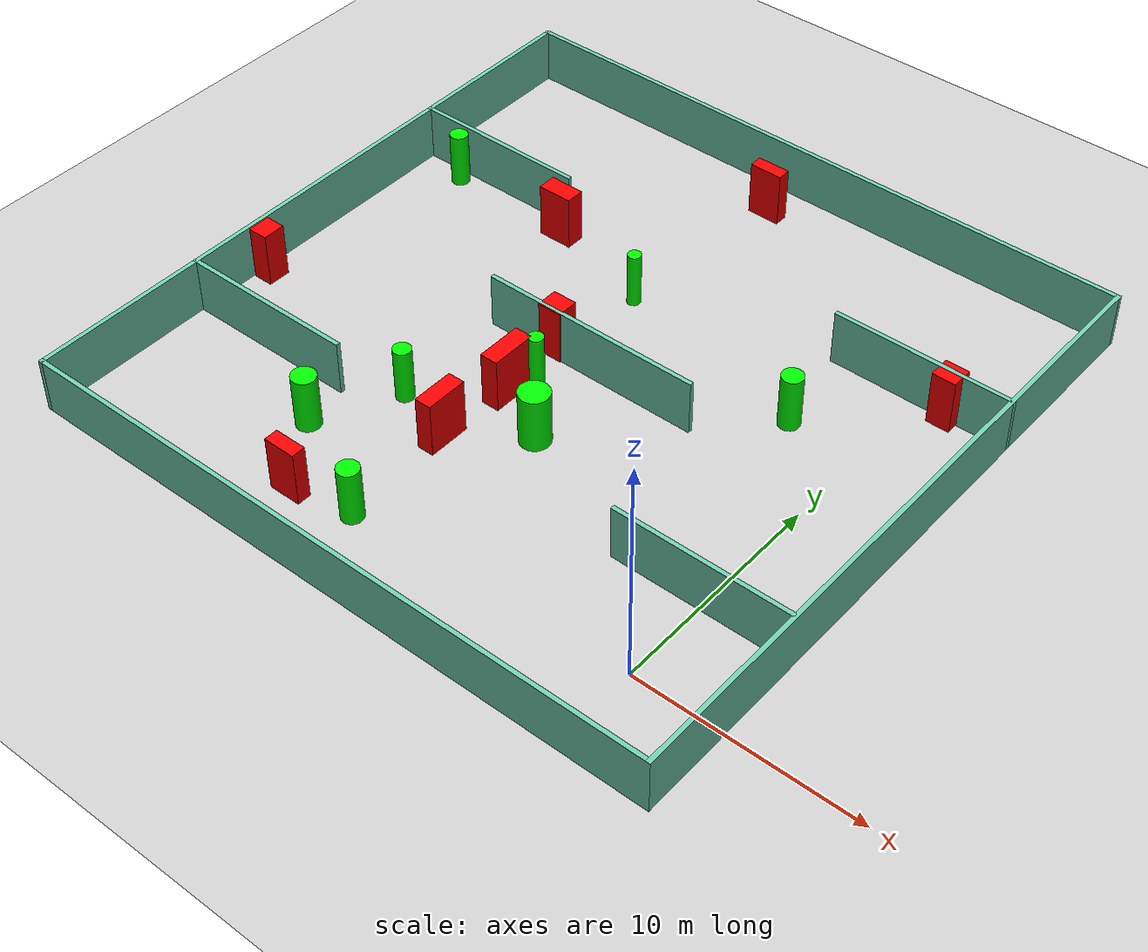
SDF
<sdf version="1.7">
 <world name="default">
  <light name="sun" type="directional">
   <pose>0 0 10 0 -0 0</pose>
   <diffuse>0.8 0.8 0.8 1</diffuse>
   <specular>0.2 0.2 0.2 1</specular>
   <attenuation>
    <range>1000</range>
    <constant>0.9</constant>
    <linear>0.01</linear>
    <quadratic>0.001</quadratic>
   </attenuation>
   <direction>-0.5 0.1 -0.9</direction>
   <spot><inner_angle>0</inner_angle><outer_angle>0</outer_angle><falloff>0</falloff></spot>
  </light>
  <model name="ground_plane">
   <static>1</static>
   <link name="link">
    <collision name="collision">
     <geometry><plane><normal>0 0 1</normal><size>100 100</size></plane></geometry>
     <surface>
      <contact><collide_bitmask>65535</collide_bitmask></contact>
      <friction><ode><mu>100</mu><mu2>50</mu2></ode></friction>
     </surface>
    </collision>
    <visual name="visual">
     <cast_shadows>0</cast_shadows>
     <geometry><plane><normal>0 0 1</normal><size>100 100</size></plane></geometry>
     <material>
      <script><uri>file://media/materials/scripts/gazebo.material</uri><name>Gazebo/Grey</name></script>
     </material>
    </visual>
   </link>
  </model>
  <gravity>0 0 -9.8</gravity>
  <magnetic_field>6e-06 2.3e-05 -4.2e-05</magnetic_field>
  <atmosphere type="adiabatic"/>
  <physics type="ode">
   <max_step_size>0.001</max_step_size>
   <real_time_factor>1</real_time_factor>
   <real_time_update_rate>1000</real_time_update_rate>
  </physics>
  <scene><ambient>0.4 0.4 0.4 1</ambient><background>0.7 0.7 0.7 1</background><shadows>1</shadows></scene>
  <spherical_coordinates>
   <surface_model>EARTH_WGS84</surface_model>
   <latitude_deg>0</latitude_deg>
   <longitude_deg>0</longitude_deg>
   <elevation>0</elevation>
   <heading_deg>0</heading_deg>
  </spherical_coordinates>
  <model name="my_base_walls">
   <link name="Wall_10">
    <collision name="Wall_10_Collision">
     <geometry><box><size>8.2 0.2 2.5</size></box></geometry>
     <pose>0 0 1.25 0 -0 0</pose>
    </collision>
    <visual name="Wall_10_Visual">
     <pose>0 0 1.25 0 -0 0</pose>
     <geometry><box><size>8.2 0.2 2.5</size></box></geometry>
     <material>
      <script><uri>file://media/materials/scripts/gazebo.material</uri><name>Gazebo/Grey</name></script>
      <ambient>0.435294 0.796078 0.67451 1</ambient>
     </material>
     <meta><layer>0</layer></meta>
    </visual>
    <pose>-11 -7 0 0 -0 0</pose>
   </link>
   <link name="Wall_12">
    <collision name="Wall_12_Collision">
     <geometry><box><size>8.2 0.2 2.5</size></box></geometry>
     <pose>0 0 1.25 0 -0 0</pose>
    </collision>
    <visual name="Wall_12_Visual">
     <pose>0 0 1.25 0 -0 0</pose>
     <geometry><box><size>8.2 0.2 2.5</size></box></geometry>
     <material>
      <script><uri>file://media/materials/scripts/gazebo.material</uri><name>Gazebo/Grey</name></script>
      <ambient>0.435294 0.796078 0.67451 1</ambient>
     </material>
     <meta><layer>0</layer></meta>
    </visual>
    <pose>-11 7 0 0 -0 0</pose>
   </link>
   <link name="Wall_14">
    <collision name="Wall_14_Collision">
     <geometry><box><size>8.2 0.2 2.5</size></box></geometry>
     <pose>0 0 1.25 0 -0 0</pose>
    </collision>
    <visual name="Wall_14_Visual">
     <pose>0 0 1.25 0 -0 0</pose>
     <geometry><box><size>8.2 0.2 2.5</size></box></geometry>
     <material>
      <script><uri>file://media/materials/scripts/gazebo.material</uri><name>Gazebo/Grey</name></script>
      <ambient>0.435294 0.796078 0.67451 1</ambient>
     </material>
     <meta><layer>0</layer></meta>
    </visual>
    <pose>11 7 0 0 -0 3.14159</pose>
   </link>
   <link name="Wall_16">
    <collision name="Wall_16_Collision">
     <geometry><box><size>10.2 0.2 2.5</size></box></geometry>
     <pose>0 0 1.25 0 -0 0</pose>
    </collision>
    <visual name="Wall_16_Visual">
     <pose>0 0 1.25 0 -0 0</pose>
     <geometry><box><size>10.2 0.2 2.5</size></box></geometry>
     <material>
      <script><uri>file://media/materials/scripts/gazebo.material</uri><name>Gazebo/Grey</name></script>
      <ambient>0.435294 0.796078 0.67451 1</ambient>
     </material>
     <meta><layer>0</layer></meta>
    </visual>
    <pose>0 0 0 0 -0 3.14159</pose>
   </link>
   <link name="Wall_2">
    <collision name="Wall_2_Collision">
     <geometry><box><size>30.2 0.2 2.5</size></box></geometry>
     <pose>0 0 1.25 0 -0 0</pose>
    </collision>
    <visual name="Wall_2_Visual">
     <pose>0 0 1.25 0 -0 0</pose>
     <geometry><box><size>30.2 0.2 2.5</size></box></geometry>
     <material>
      <script><uri>file://media/materials/scripts/gazebo.material</uri><name>Gazebo/Grey</name></script>
      <ambient>0.435294 0.796078 0.67451 1</ambient>
     </material>
     <meta><layer>0</layer></meta>
    </visual>
    <pose>0 -15 0 0 -0 3.14159</pose>
   </link>
   <link name="Wall_3">
    <collision name="Wall_3_Collision">
     <geometry><box><size>30.2 0.2 2.5</size></box></geometry>
     <pose>0 0 1.25 0 -0 0</pose>
    </collision>
    <visual name="Wall_3_Visual">
     <pose>0 0 1.25 0 -0 0</pose>
     <geometry><box><size>30.2 0.2 2.5</size></box></geometry>
     <material>
      <script><uri>file://media/materials/scripts/gazebo.material</uri><name>Gazebo/Grey</name></script>
      <ambient>0.435294 0.796078 0.67451 1</ambient>
     </material>
     <meta><layer>0</layer></meta>
    </visual>
    <pose>-15 0 0 0 -0 1.5708</pose>
   </link>
   <link name="Wall_4">
    <collision name="Wall_4_Collision">
     <geometry><box><size>30.2 0.2 2.5</size></box></geometry>
     <pose>0 0 1.25 0 -0 0</pose>
    </collision>
    <visual name="Wall_4_Visual">
     <pose>0 0 1.25 0 -0 0</pose>
     <geometry><box><size>30.2 0.2 2.5</size></box></geometry>
     <material>
      <script><uri>file://media/materials/scripts/gazebo.material</uri><name>Gazebo/Grey</name></script>
      <ambient>0.435294 0.796078 0.67451 1</ambient>
     </material>
     <meta><layer>0</layer></meta>
    </visual>
    <pose>0 15 0 0 -0 0</pose>
   </link>
   <link name="Wall_6">
    <collision name="Wall_6_Collision">
     <geometry><box><size>30.2 0.2 2.5</size></box></geometry>
     <pose>0 0 1.25 0 -0 0</pose>
    </collision>
    <visual name="Wall_6_Visual">
     <pose>0 0 1.25 0 -0 0</pose>
     <geometry><box><size>30.2 0.2 2.5</size></box></geometry>
     <material>
      <script><uri>file://media/materials/scripts/gazebo.material</uri><name>Gazebo/Grey</name></script>
      <ambient>0.435294 0.796078 0.67451 1</ambient>
     </material>
     <meta><layer>0</layer></meta>
    </visual>
    <pose>15 0 0 0 -0 1.5708</pose>
   </link>
   <link name="Wall_8">
    <collision name="Wall_8_Collision">
     <geometry><box><size>8.2 0.2 2.5</size></box></geometry>
     <pose>0 0 1.25 0 -0 0</pose>
    </collision>
    <visual name="Wall_8_Visual">
     <pose>0 0 1.25 0 -0 0</pose>
     <geometry><box><size>8.2 0.2 2.5</size></box></geometry>
     <material>
      <script><uri>file://media/materials/scripts/gazebo.material</uri><name>Gazebo/Grey</name></script>
      <ambient>0.435294 0.796078 0.67451 1</ambient>
     </material>
     <meta><layer>0</layer></meta>
    </visual>
    <pose>11 -7 0 0 -0 3.14159</pose>
   </link>
   <static>1</static>
   <pose>-11 11 0 0 -0 0</pose>
  </model>
  <model name="cylinder1">
   <static>1</static>
   <link name="link">
    <inertial>
     <mass>1</mass>
     <inertia><ixx>0.5</ixx><ixy>0</ixy><ixz>0</ixz><iyy>0.5</iyy><iyz>0</iyz><izz>1</izz></inertia>
    </inertial>
    <collision name="collision">
     <geometry><cylinder><radius>0.39442294423514906</radius><length>2.5</length></cylinder></geometry>
    </collision>
    <visual name="visual">
     <geometry><cylinder><radius>0.39442294423514906</radius><length>2.5</length></cylinder></geometry>
     <material>
      <ambient>0 1 0 1</ambient>
      <diffuse>0 1 0 1</diffuse>
      <specular>0.1 0.1 0.1 1</specular>
      <emissive>0 0 0 0</emissive>
     </material>
    </visual>
   </link>
   <pose>-15.81187786412358 5.398430225600158 1.25 0 0 0</pose>
  </model>
  <model name="cylinder2">
   <static>1</static>
   <link name="link">
    <inertial>
     <mass>1</mass>
     <inertia><ixx>0.5</ixx><ixy>0</ixy><ixz>0</ixz><iyy>0.5</iyy><iyz>0</iyz><izz>1</izz></inertia>
    </inertial>
    <collision name="collision">
     <geometry><cylinder><radius>0.41062869300065263</radius><length>2.5</length></cylinder></geometry>
    </collision>
    <visual name="visual">
     <geometry><cylinder><radius>0.41062869300065263</radius><length>2.5</length></cylinder></geometry>
     <material>
      <ambient>0 1 0 1</ambient>
      <diffuse>0 1 0 1</diffuse>
      <specular>0.1 0.1 0.1 1</specular>
      <emissive>0 0 0 0</emissive>
     </material>
    </visual>
   </link>
   <pose>-23.71132778764643 17.33765122772595 1.25 0 0 0</pose>
  </model>
  <model name="cylinder3">
   <static>1</static>
   <link name="link">
    <inertial>
     <mass>1</mass>
     <inertia><ixx>0.5</ixx><ixy>0</ixy><ixz>0</ixz><iyy>0.5</iyy><iyz>0</iyz><izz>1</izz></inertia>
    </inertial>
    <collision name="collision">
     <geometry><cylinder><radius>0.6725604739844765</radius><length>2.5</length></cylinder></geometry>
    </collision>
    <visual name="visual">
     <geometry><cylinder><radius>0.6725604739844765</radius><length>2.5</length></cylinder></geometry>
     <material>
      <ambient>0 1 0 1</ambient>
      <diffuse>0 1 0 1</diffuse>
      <specular>0.1 0.1 0.1 1</specular>
      <emissive>0 0 0 0</emissive>
     </material>
    </visual>
   </link>
   <pose>-10.229713135614313 6.802139745455452 1.25 0 0 0</pose>
  </model>
  <model name="cylinder4">
   <static>1</static>
   <link name="link">
    <inertial>
     <mass>1</mass>
     <inertia><ixx>0.5</ixx><ixy>0</ixy><ixz>0</ixz><iyy>0.5</iyy><iyz>0</iyz><izz>1</izz></inertia>
    </inertial>
    <collision name="collision">
     <geometry><cylinder><radius>0.3303797200873705</radius><length>2.5</length></cylinder></geometry>
    </collision>
    <visual name="visual">
     <geometry><cylinder><radius>0.3303797200873705</radius><length>2.5</length></cylinder></geometry>
     <material>
      <ambient>0 1 0 1</ambient>
      <diffuse>0 1 0 1</diffuse>
      <specular>0.1 0.1 0.1 1</specular>
      <emissive>0 0 0 0</emissive>
     </material>
    </visual>
   </link>
   <pose>-12.278982072711486 9.271131633832782 1.25 0 0 0</pose>
  </model>
  <model name="cylinder5">
   <static>1</static>
   <link name="link">
    <inertial>
     <mass>1</mass>
     <inertia><ixx>0.5</ixx><ixy>0</ixy><ixz>0</ixz><iyy>0.5</iyy><iyz>0</iyz><izz>1</izz></inertia>
    </inertial>
    <collision name="collision">
     <geometry><cylinder><radius>0.5381995250457974</radius><length>2.5</length></cylinder></geometry>
    </collision>
    <visual name="visual">
     <geometry><cylinder><radius>0.5381995250457974</radius><length>2.5</length></cylinder></geometry>
     <material>
      <ambient>0 1 0 1</ambient>
      <diffuse>0 1 0 1</diffuse>
      <specular>0.1 0.1 0.1 1</specular>
      <emissive>0 0 0 0</emissive>
     </material>
    </visual>
   </link>
   <pose>-17.63797402395287 1.8549647902882773 1.25 0 0 0</pose>
  </model>
  <model name="cylinder6">
   <static>1</static>
   <link name="link">
    <inertial>
     <mass>1</mass>
     <inertia><ixx>0.5</ixx><ixy>0</ixy><ixz>0</ixz><iyy>0.5</iyy><iyz>0</iyz><izz>1</izz></inertia>
    </inertial>
    <collision name="collision">
     <geometry><cylinder><radius>0.4804298431529968</radius><length>2.5</length></cylinder></geometry>
    </collision>
    <visual name="visual">
     <geometry><cylinder><radius>0.4804298431529968</radius><length>2.5</length></cylinder></geometry>
     <material>
      <ambient>0 1 0 1</ambient>
      <diffuse>0 1 0 1</diffuse>
      <specular>0.1 0.1 0.1 1</specular>
      <emissive>0 0 0 0</emissive>
     </material>
    </visual>
   </link>
   <pose>-12.781791054285012 -0.659167034871682 1.25 0 0 0</pose>
  </model>
  <model name="cylinder7">
   <static>1</static>
   <link name="link">
    <inertial>
     <mass>1</mass>
     <inertia><ixx>0.5</ixx><ixy>0</ixy><ixz>0</ixz><iyy>0.5</iyy><iyz>0</iyz><izz>1</izz></inertia>
    </inertial>
    <collision name="collision">
     <geometry><cylinder><radius>0.3012057535610167</radius><length>2.5</length></cylinder></geometry>
    </collision>
    <visual name="visual">
     <geometry><cylinder><radius>0.3012057535610167</radius><length>2.5</length></cylinder></geometry>
     <material>
      <ambient>0 1 0 1</ambient>
      <diffuse>0 1 0 1</diffuse>
      <specular>0.1 0.1 0.1 1</specular>
      <emissive>0 0 0 0</emissive>
     </material>
    </visual>
   </link>
   <pose>-12.525116877708907 15.722244324184686 1.25 0 0 0</pose>
  </model>
  <model name="cylinder8">
   <static>1</static>
   <link name="link">
    <inertial>
     <mass>1</mass>
     <inertia><ixx>0.5</ixx><ixy>0</ixy><ixz>0</ixz><iyy>0.5</iyy><iyz>0</iyz><izz>1</izz></inertia>
    </inertial>
    <collision name="collision">
     <geometry><cylinder><radius>0.4735539024590465</radius><length>2.5</length></cylinder></geometry>
    </collision>
    <visual name="visual">
     <geometry><cylinder><radius>0.4735539024590465</radius><length>2.5</length></cylinder></geometry>
     <material>
      <ambient>0 1 0 1</ambient>
      <diffuse>0 1 0 1</diffuse>
      <specular>0.1 0.1 0.1 1</specular>
      <emissive>0 0 0 0</emissive>
     </material>
    </visual>
   </link>
   <pose>-3.2275638818757244 13.845001952494346 1.25 0 0 0</pose>
  </model>
  <model name="box1">
   <static>1</static>
   <link name="link">
    <inertial>
     <mass>1</mass>
     <inertia><ixx>0.083</ixx><ixy>0</ixy><ixz>0</ixz><iyy>0.083</iyy><iyz>0</iyz><izz>0.083</izz></inertia>
    </inertial>
    <collision name="collision">
     <geometry><box><size>1.5919444790834854 0.8566670243395611 2.5</size></box></geometry>
    </collision>
    <visual name="visual">
     <geometry><box><size>1.5919444790834854 0.8566670243395611 2.5</size></box></geometry>
     <material>
      <ambient>1 0 0 1</ambient>
      <diffuse>1 0 0 1</diffuse>
      <specular>0.1 0.1 0.1 1</specular>
      <emissive>0 0 0 0</emissive>
     </material>
    </visual>
    <sensor name="my_contact" type="contact">
     <contact><collision>box_collision</collision><topic>__default_topic__</topic></contact>
    </sensor>
   </link>
   <pose>-17.694687695877803 17.15845674176053 1.25 0 0 0</pose>
  </model>
  <model name="box2">
   <static>1</static>
   <link name="link">
    <inertial>
     <mass>1</mass>
     <inertia><ixx>0.083</ixx><ixy>0</ixy><ixz>0</ixz><iyy>0.083</iyy><iyz>0</iyz><izz>0.083</izz></inertia>
    </inertial>
    <collision name="collision">
     <geometry><box><size>1.520858486070468 0.6086276126378907 2.5</size></box></geometry>
    </collision>
    <visual name="visual">
     <geometry><box><size>1.520858486070468 0.6086276126378907 2.5</size></box></geometry>
     <material>
      <ambient>1 0 0 1</ambient>
      <diffuse>1 0 0 1</diffuse>
      <specular>0.1 0.1 0.1 1</specular>
      <emissive>0 0 0 0</emissive>
     </material>
    </visual>
    <sensor name="my_contact" type="contact">
     <contact><collision>box_collision</collision><topic>__default_topic__</topic></contact>
    </sensor>
   </link>
   <pose>-11.777420491591016 24.0528539811778 1.25 0 0 0</pose>
  </model>
  <model name="box3">
   <static>1</static>
   <link name="link">
    <inertial>
     <mass>1</mass>
     <inertia><ixx>0.083</ixx><ixy>0</ixy><ixz>0</ixz><iyy>0.083</iyy><iyz>0</iyz><izz>0.083</izz></inertia>
    </inertial>
    <collision name="collision">
     <geometry><box><size>0.9129983019307075 1.0381125402575442 2.5</size></box></geometry>
    </collision>
    <visual name="visual">
     <geometry><box><size>0.9129983019307075 1.0381125402575442 2.5</size></box></geometry>
     <material>
      <ambient>1 0 0 1</ambient>
      <diffuse>1 0 0 1</diffuse>
      <specular>0.1 0.1 0.1 1</specular>
      <emissive>0 0 0 0</emissive>
     </material>
    </visual>
    <sensor name="my_contact" type="contact">
     <contact><collision>box_collision</collision><topic>__default_topic__</topic></contact>
    </sensor>
   </link>
   <pose>-25.37918880607422 7.324124677447092 1.25 0 0 0</pose>
  </model>
  <model name="box4">
   <static>1</static>
   <link name="link">
    <inertial>
     <mass>1</mass>
     <inertia><ixx>0.083</ixx><ixy>0</ixy><ixz>0</ixz><iyy>0.083</iyy><iyz>0</iyz><izz>0.083</izz></inertia>
    </inertial>
    <collision name="collision">
     <geometry><box><size>1.4703109527824083 0.6272923304447436 2.5</size></box></geometry>
    </collision>
    <visual name="visual">
     <geometry><box><size>1.4703109527824083 0.6272923304447436 2.5</size></box></geometry>
     <material>
      <ambient>1 0 0 1</ambient>
      <diffuse>1 0 0 1</diffuse>
      <specular>0.1 0.1 0.1 1</specular>
      <emissive>0 0 0 0</emissive>
     </material>
    </visual>
    <sensor name="my_contact" type="contact">
     <contact><collision>box_collision</collision><topic>__default_topic__</topic></contact>
    </sensor>
   </link>
   <pose>-15.490950846308944 -1.228900232235659 1.25 0 0 0</pose>
  </model>
  <model name="box5">
   <static>1</static>
   <link name="link">
    <inertial>
     <mass>1</mass>
     <inertia><ixx>0.083</ixx><ixy>0</ixy><ixz>0</ixz><iyy>0.083</iyy><iyz>0</iyz><izz>0.083</izz></inertia>
    </inertial>
    <collision name="collision">
     <geometry><box><size>1.10038880430269 0.9927826180234415 2.5</size></box></geometry>
    </collision>
    <visual name="visual">
     <geometry><box><size>1.10038880430269 0.9927826180234415 2.5</size></box></geometry>
     <material>
      <ambient>1 0 0 1</ambient>
      <diffuse>1 0 0 1</diffuse>
      <specular>0.1 0.1 0.1 1</specular>
      <emissive>0 0 0 0</emissive>
     </material>
    </visual>
    <sensor name="my_contact" type="contact">
     <contact><collision>box_collision</collision><topic>__default_topic__</topic></contact>
    </sensor>
   </link>
   <pose>-12.95574131793847 11.344713627356636 1.25 0 0 0</pose>
  </model>
  <model name="box6">
   <static>1</static>
   <link name="link">
    <inertial>
     <mass>1</mass>
     <inertia><ixx>0.083</ixx><ixy>0</ixy><ixz>0</ixz><iyy>0.083</iyy><iyz>0</iyz><izz>0.083</izz></inertia>
    </inertial>
    <collision name="collision">
     <geometry><box><size>0.7590879068452436 1.9157906495563437 2.5</size></box></geometry>
    </collision>
    <visual name="visual">
     <geometry><box><size>0.7590879068452436 1.9157906495563437 2.5</size></box></geometry>
     <material>
      <ambient>1 0 0 1</ambient>
      <diffuse>1 0 0 1</diffuse>
      <specular>0.1 0.1 0.1 1</specular>
      <emissive>0 0 0 0</emissive>
     </material>
    </visual>
    <sensor name="my_contact" type="contact">
     <contact><collision>box_collision</collision><topic>__default_topic__</topic></contact>
    </sensor>
   </link>
   <pose>-13.055977159282975 4.567988379601459 1.25 0 0 0</pose>
  </model>
  <model name="box7">
   <static>1</static>
   <link name="link">
    <inertial>
     <mass>1</mass>
     <inertia><ixx>0.083</ixx><ixy>0</ixy><ixz>0</ixz><iyy>0.083</iyy><iyz>0</iyz><izz>0.083</izz></inertia>
    </inertial>
    <collision name="collision">
     <geometry><box><size>0.8113046940641411 2.0826069405908196 2.5</size></box></geometry>
    </collision>
    <visual name="visual">
     <geometry><box><size>0.8113046940641411 2.0826069405908196 2.5</size></box></geometry>
     <material>
      <ambient>1 0 0 1</ambient>
      <diffuse>1 0 0 1</diffuse>
      <specular>0.1 0.1 0.1 1</specular>
      <emissive>0 0 0 0</emissive>
     </material>
    </visual>
    <sensor name="my_contact" type="contact">
     <contact><collision>box_collision</collision><topic>__default_topic__</topic></contact>
    </sensor>
   </link>
   <pose>-12.82260543519533 8.13496166090293 1.25 0 0 0</pose>
  </model>
  <model name="box8">
   <static>1</static>
   <link name="link">
    <inertial>
     <mass>1</mass>
     <inertia><ixx>0.083</ixx><ixy>0</ixy><ixz>0</ixz><iyy>0.083</iyy><iyz>0</iyz><izz>0.083</izz></inertia>
    </inertial>
    <collision name="collision">
     <geometry><box><size>1.0676063393657533 0.9924349389711652 2.5</size></box></geometry>
    </collision>
    <visual name="visual">
     <geometry><box><size>1.0676063393657533 0.9924349389711652 2.5</size></box></geometry>
     <material>
      <ambient>1 0 0 1</ambient>
      <diffuse>1 0 0 1</diffuse>
      <specular>0.1 0.1 0.1 1</specular>
      <emissive>0 0 0 0</emissive>
     </material>
    </visual>
    <sensor name="my_contact" type="contact">
     <contact><collision>box_collision</collision><topic>__default_topic__</topic></contact>
    </sensor>
   </link>
   <pose>1.3305243765378911 17.871482035122977 1.25 0 0 0</pose>
  </model>
 </world>
</sdf>
